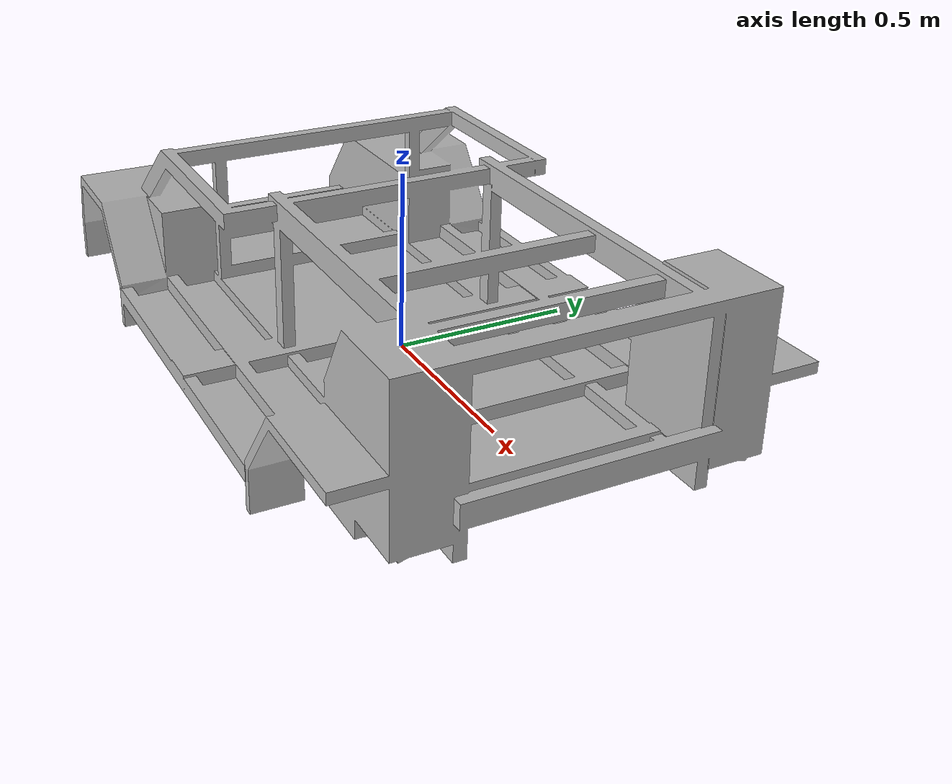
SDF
<?xml version="1.0" ?>
<sdf version="1.7">
  <model name="amp_hull">
    <static>false</static>
    <link name="link">
      <static>false</static>
      <gravity>true</gravity>
      <visual name="visual">
        <geometry>
          <mesh>
            <uri>model://amp_hull/amp_hull.obj</uri>
            <scale>1 1 1</scale>
          </mesh>
        </geometry>
      </visual>
      <collision name="collision">
        <geometry>
          <mesh>
            <uri>model://amp_hull/amp_hull.obj</uri>
          </mesh>
        </geometry>
      </collision>
    </link>
  </model>
</sdf>
